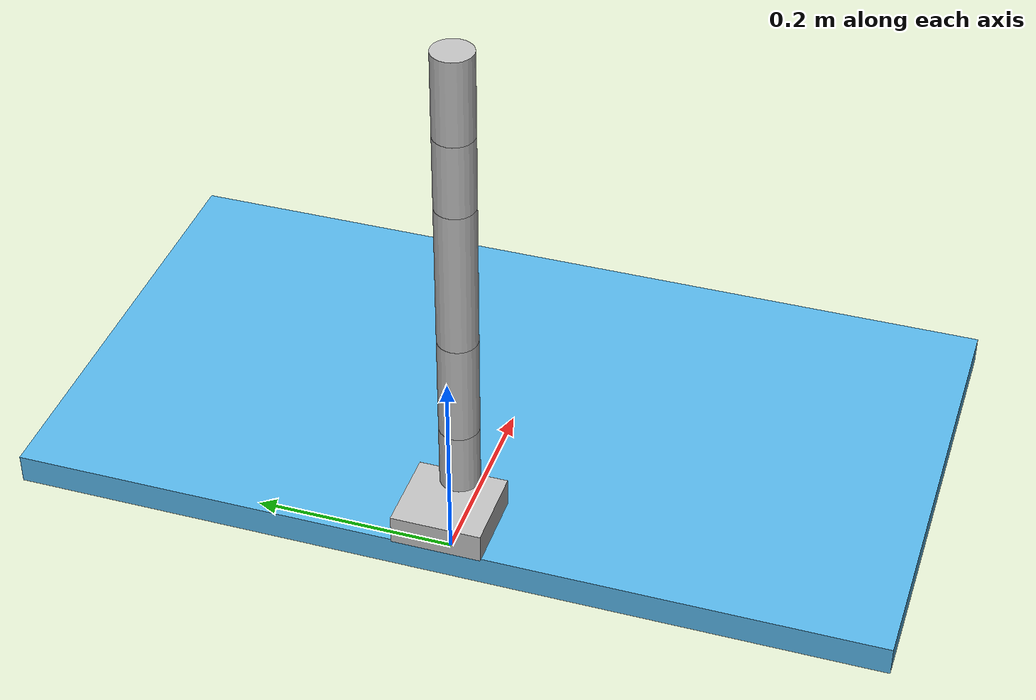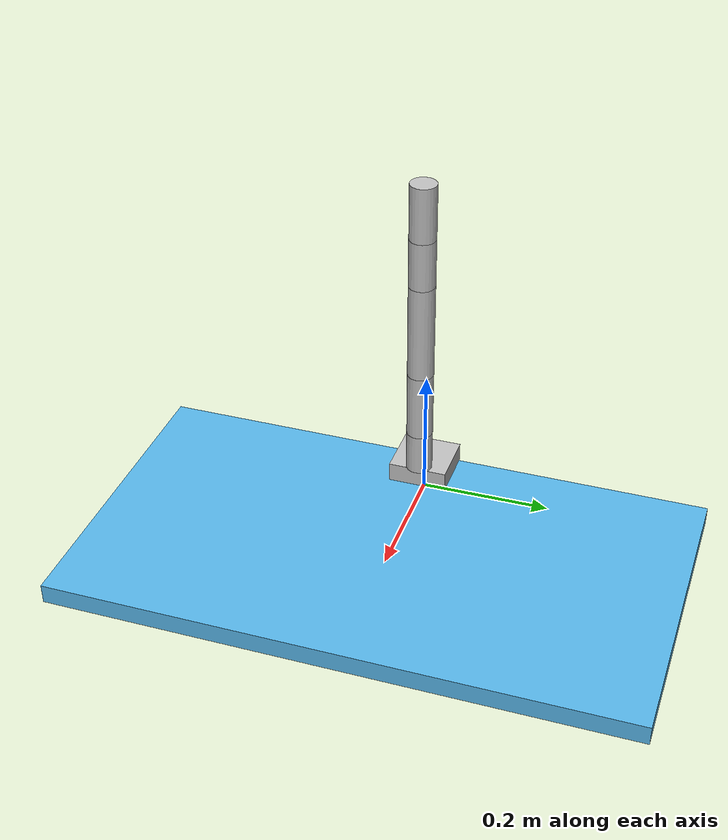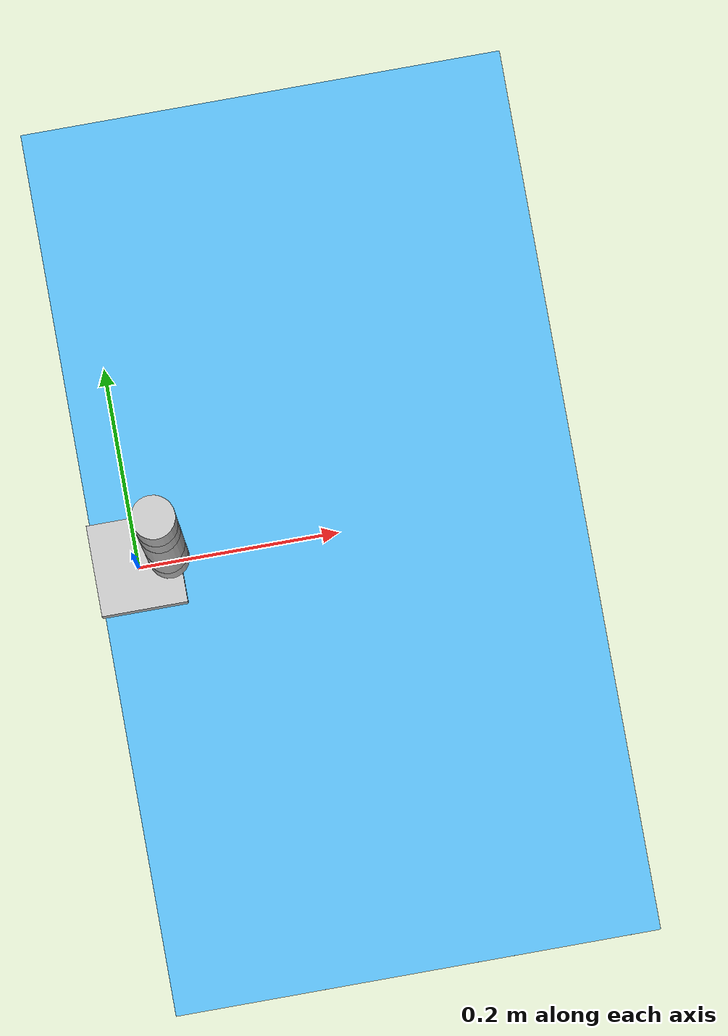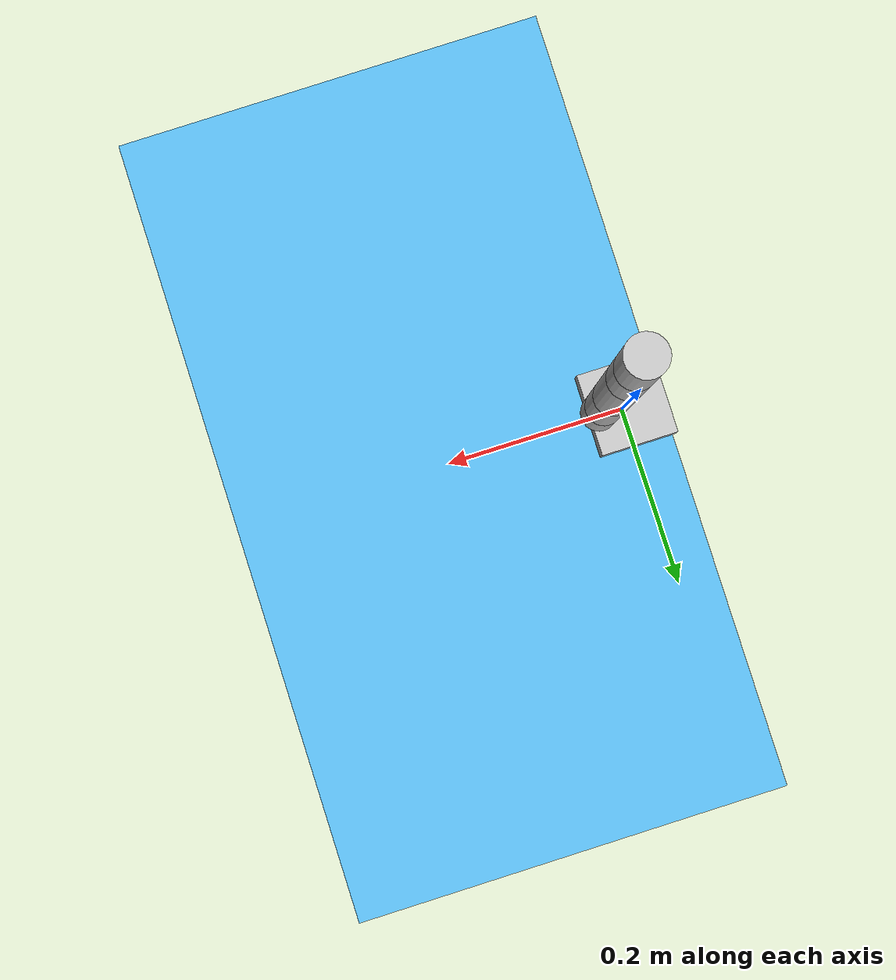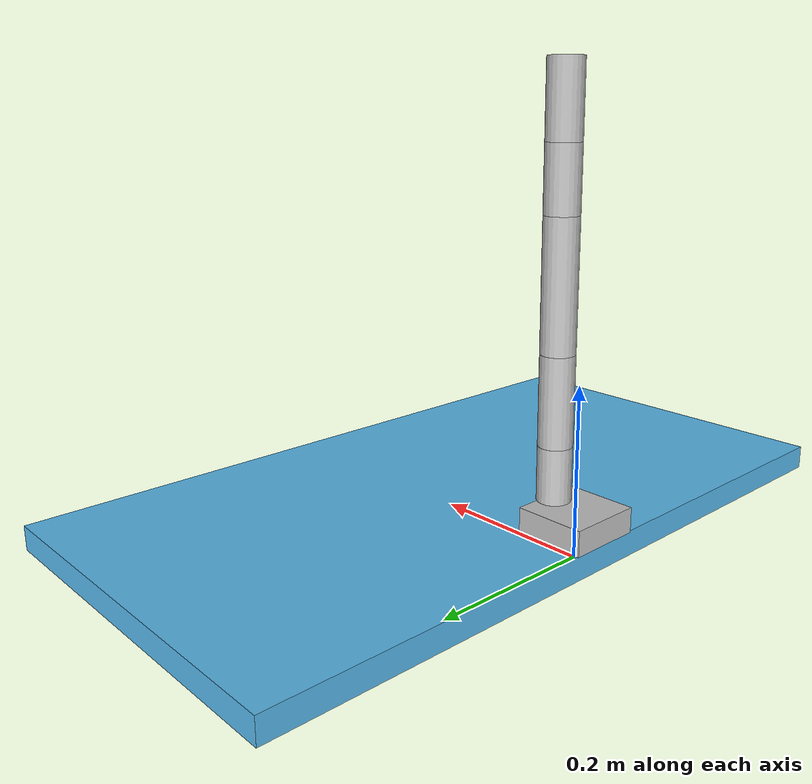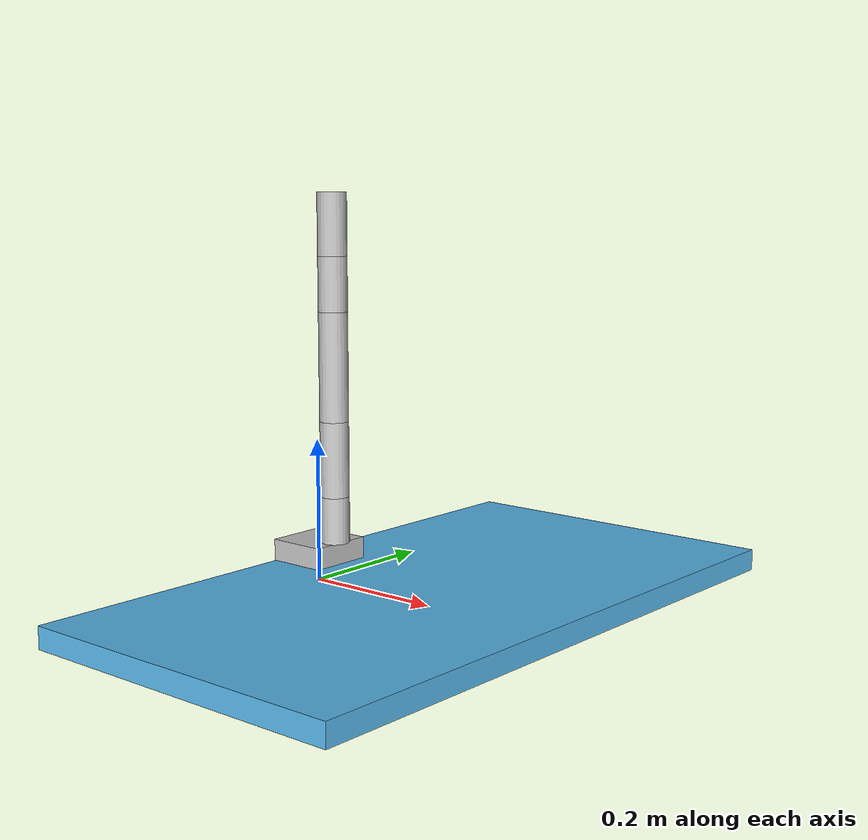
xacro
<?xml version="1.0"?>
<robot  xmlns:xacro="http://www.ros.org/wiki/xacro">

  <!--Define constants-->
  <xacro:property name="pi" value="3.141592654"/>
  <xacro:property name="deg" value="0.017453293"/><!--degrees to radians-->
  <xacro:property name="mass0" value="150" />
  <xacro:property name="mass1" value="138" />
  <xacro:property name="mass2" value="95" />
  <xacro:property name="mass3" value="71" />
  <xacro:property name="mass4" value="17" />
  <xacro:property name="mass5" value="7" />
  <xacro:property name="mass6" value="0.5" />
  <xacro:property name="gripper_mass" value="0.3" />
  <xacro:property name="finger_mass" value="0.1" />
  <xacro:property name="gripper_type" value="two_finger" /><!--value="vacuum" or "two_finger"-->
  <xacro:property name="vacuum_gripper_radius" value="0.1" />

  <!--Import gazebo elements-->

  <link name="world"></link>

  <joint name="world_to_work_space" type="fixed">
      <parent link="world" />
      <child link="work_space" />
      <origin  rpy="1.57 0 0" xyz="0 0 0.015" />
  </joint>

  <link name="work_space">
      <visual>
          <origin xyz="0.2 0 0" rpy="0 0 0"/>
          <geometry>
              <box size="0.48 0.03 0.88" />
          </geometry>
      </visual>
  </link>

  <joint name="base_joint" type="fixed">
    <parent link="work_space"/>
    <child link="base_link"/>
    <origin xyz="0 0.03 0" rpy="-1.57 0 0"/>
  </joint>

  <link name="base_link">
    <inertial>
      <origin xyz="0 0 0" rpy="0 0 0"/>
      <mass value="${mass0}"/>
      <inertia ixx="60" ixy="0" ixz="0" iyy="70" iyz="0" izz="100"/>
    </inertial>
    <visual>
      <origin xyz="0 0 0" rpy="${-pi/2} 0 0"/>
      <geometry>
        <box size="0.085 0.03 0.09" />
      </geometry>
      <material name="">
        <color rgba="0.75294 0.75294 0.75294 1"/>
      </material>
    </visual>
    <collision>
      <origin xyz="0 0 0" rpy="${-pi/2} 0 0"/>
      <geometry>
        <box size="0.085 0.03 0.09" />
      </geometry>
    </collision>
  </link>

  <joint name="joint_1" type="revolute">
    <origin xyz="0.032 0 0.015" rpy="0 0 0"/>
    <parent link="base_link"/>
    <child link="link_1"/>
    <axis xyz="0 0 1"/>
    <limit lower="${-185*deg}" upper="${185*deg}" effort="300" velocity="${123*deg}"/>
  </joint>

  <link name="link_1">
    <inertial>
      <origin xyz="0 0 0.4" rpy="0 0 0"/>
      <mass value="${mass1}"/>
      <inertia ixx="30" ixy="0" ixz="0" iyy="50" iyz="0" izz="50"/>
    </inertial>
    <visual>
      <origin xyz="0 0 0.0325" rpy="0 0 0"/>
      <geometry>
        <cylinder length="0.065" radius="0.02" />
      </geometry>
      <material name="">
        <color rgba="0.75294 0.75294 0.75294 1"/>
      </material>
    </visual>
    <collision>
      <origin xyz="0 0 0" rpy="0 0 0"/>
      <geometry>
        <cylinder length="0.065" radius="0.02" />
      </geometry>
    </collision>
  </link>

  <joint name="joint_2" type="revolute">
    <origin xyz="0 0 0.065" rpy="0 0 0"/>
    <parent link="link_1"/>
    <child link="link_2"/>
    <axis xyz="0 1 0"/>
    <limit lower="${-45*deg}" upper="${85*deg}" effort="300" velocity="${115*deg}"/>
  </joint>

  <link name="link_2">
    <inertial>
      <origin xyz="0 0 0.44751" rpy="0 0 0"/>
      <mass value="${mass2}"/>
      <inertia ixx="40" ixy="0" ixz="0" iyy="40" iyz="0" izz="10"/>
    </inertial>
    <visual>
      <origin xyz="0 0 0.0525" rpy="0 0 0"/>
      <geometry>
        <cylinder length="0.105" radius="0.02" />
      </geometry>
      <material name="">
        <color rgba="0.75294 0.75294 0.75294 1"/>
      </material>
    </visual>
    <collision>
      <origin xyz="0 0 0" rpy="0 0 0"/>
      <geometry>
        <cylinder length="0.105" radius="0.02" />
      </geometry>
    </collision>
  </link>

  <joint name="joint_3" type="revolute">
    <origin xyz="0 0 0.105" rpy="0 0 0"/>
    <parent link="link_2"/>
    <child link="link_3"/>
    <axis xyz="0 1 0"/>
    <limit lower="${-210*deg}" upper="${(155-90)*deg}" effort="300" velocity="${112*deg}"/>
  </joint>

  <link name="link_3">
    <inertial>
      <origin xyz="0.18842 0.18344 -0.042799" rpy="0 0 0"/>
      <mass value="${mass3}"/>
      <inertia ixx="1" ixy="0" ixz="0" iyy="10" iyz="0" izz="10"/>
    </inertial>
    <visual>
      <origin xyz="0 0 0.075" rpy="0 0 0"/>
      <geometry>
        <cylinder length="0.15" radius="0.02" />
      </geometry>
      <material name="">
        <color rgba="0.75294 0.75294 0.75294 1"/>
      </material>
    </visual>
    <collision>
      <origin xyz="0 -0.184 0" rpy="0 0 0"/>
      <geometry>
        <cylinder length="0.15" radius="0.02" />
      </geometry>
    </collision>
  </link>

  <joint name="joint_4" type="revolute">
    <origin xyz="0 0 0.15" rpy="0 0 0"/>
    <parent link="link_3"/>
    <child link="link_4"/>
    <axis xyz="0 1 0"/>
    <limit lower="${-125*deg}" upper="${125*deg}" effort="300" velocity="${172*deg}"/>
  </joint>

  <link name="link_4">
    <inertial>
      <origin xyz="0 0 0" rpy="0 0 0"/>
      <mass value="${mass5}"/>
      <inertia ixx="0.04" ixy="0" ixz="0" iyy="0.068" iyz="0" izz="0.068"/>
    </inertial>
    <visual>
      <origin xyz="0 0 0.0375" rpy="0 0 0"/>
      <geometry>
        <cylinder length="0.075" radius="0.02" />
      </geometry>
      <material name="">
        <color rgba="0.75294 0.75294 0.75294 1"/>
      </material>
    </visual>
    <collision>
      <origin xyz="0 0 0" rpy="0 0 0"/>
      <geometry>
        <cylinder length="0.075" radius="0.02" />
      </geometry>
    </collision>
  </link>

  <joint name="joint_5" type="revolute">
    <origin xyz="0 0 0.075" rpy="0 0 0"/>
    <parent link="link_4"/>
    <child link="link_5"/>
     <axis xyz="0 0 1"/>
    <limit lower="${-350*deg}" upper="${350*deg}" effort="300" velocity="${219*deg}"/>
  </joint>

  <link name="link_5">
    <inertial>
      <origin xyz="0 0 0" rpy="0 0 0"/>
      <mass value="${mass6}"/>
      <inertia ixx="0.004" ixy="0" ixz="0" iyy="0.003" iyz="0" izz="0.003"/>
    </inertial>
    <visual>
      <origin xyz="0 0 0.0425" rpy="0 0 0"/>
      <geometry>
        <cylinder length="0.085" radius="0.02" />
      </geometry>
      <material name="">
        <color rgba="0.75294 0.75294 0.75294 1"/>
      </material>
    </visual>
    <collision>
      <origin xyz="0 0 0" rpy="0 0 0"/>
      <geometry>
        <cylinder length="0.085" radius="0.04" />
      </geometry>
    </collision>
  </link>

  <!--Gripper links-->
  <!--Vacuum gripper-->

  <!--Transmission and actuators-->
  <transmission name="tran1">
    <type>transmission_interface/SimpleTransmission</type>
    <joint name="joint_1">
      <hardwareInterface>hardware_interface/PositionJointInterface</hardwareInterface>
    </joint>
    <actuator name="motor1">
      <hardwareInterface>hardware_interface/PositionJointInterface</hardwareInterface>
      <mechanicalReduction>1</mechanicalReduction>
    </actuator>
  </transmission>

  <transmission name="tran2">
    <type>transmission_interface/SimpleTransmission</type>
    <joint name="joint_2">
      <hardwareInterface>hardware_interface/PositionJointInterface</hardwareInterface>
    </joint>
    <actuator name="motor2">
      <hardwareInterface>hardware_interface/PositionJointInterface</hardwareInterface>
      <mechanicalReduction>1</mechanicalReduction>
    </actuator>
  </transmission>

  <transmission name="tran3">
    <type>transmission_interface/SimpleTransmission</type>
    <joint name="joint_3">
      <hardwareInterface>hardware_interface/PositionJointInterface</hardwareInterface>
    </joint>
    <actuator name="motor3">
      <hardwareInterface>hardware_interface/PositionJointInterface</hardwareInterface>
      <mechanicalReduction>1</mechanicalReduction>
    </actuator>
  </transmission>

  <transmission name="tran4">
    <type>transmission_interface/SimpleTransmission</type>
    <joint name="joint_4">
      <hardwareInterface>hardware_interface/PositionJointInterface</hardwareInterface>
    </joint>
    <actuator name="motor4">
      <hardwareInterface>hardware_interface/PositionJointInterface</hardwareInterface>
      <mechanicalReduction>1</mechanicalReduction>
    </actuator>
  </transmission>

  <transmission name="tran5">
    <type>transmission_interface/SimpleTransmission</type>
    <joint name="joint_5">
      <hardwareInterface>hardware_interface/PositionJointInterface</hardwareInterface>
    </joint>
    <actuator name="motor5">
      <hardwareInterface>hardware_interface/PositionJointInterface</hardwareInterface>
      <mechanicalReduction>1</mechanicalReduction>
    </actuator>
  </transmission>

</robot>
